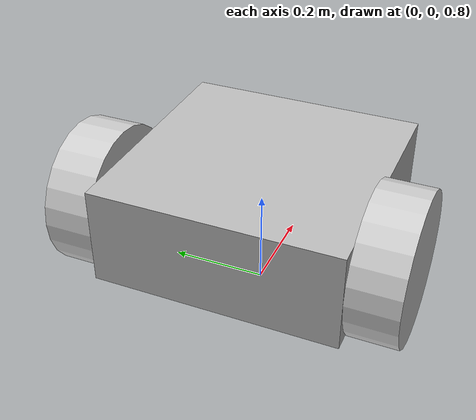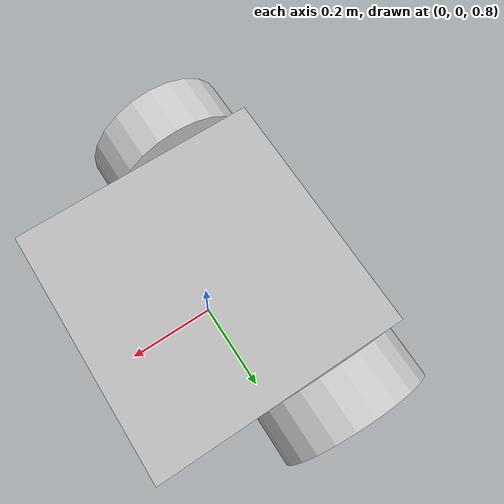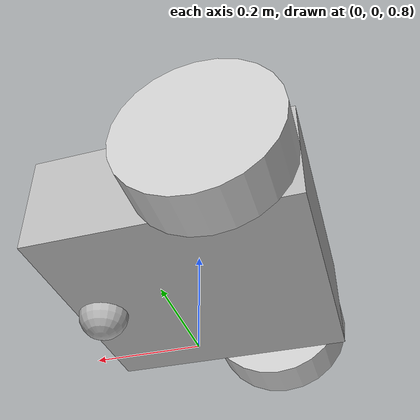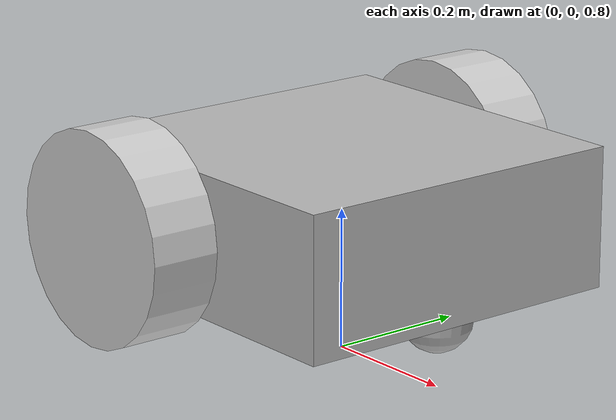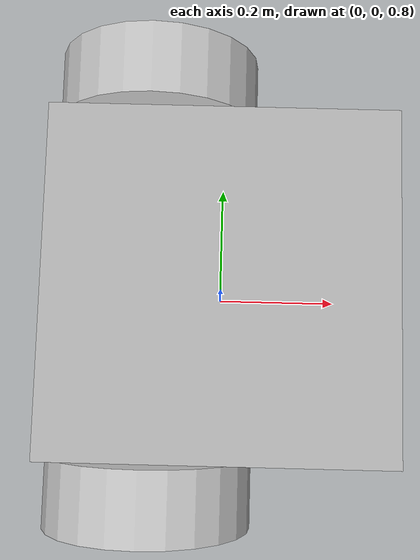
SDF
<?xml version="1.0" ?>
<sdf version="1.4">
    <model name="mobile_base">
        <!--Base-->
        <pose>0 0 1 0 0 0</pose>
        <self_collide>true</self_collide>
        <link name="base_mobile">
            <visual name="visual">
                <geometry>
                    <box>
                        <size>0.5 0.5 0.2</size>
                    </box>
                </geometry>
            </visual>
            <collision name="collision">
                <geometry>
                    <box>
                        <size>0.5 0.5 0.2</size>
                    </box>
                </geometry>
            </collision>
            <inertial>
                <mass>50</mass>
                <inertia>
                    <ixx>0.145833</ixx>
                    <ixy>0</ixy>
                    <ixz>0</ixz>
                    <iyy>0.145833</iyy>
                    <iyz>0</iyz>
                    <izz>0.125</izz>
                </inertia>
            </inertial>
            <sensor name="imu_sensor" type="imu">
                <always_on>1</always_on>
                <update_rate>1</update_rate>
                <visualize>true</visualize>
                <topic>imu</topic>
            </sensor>
        </link>

        <!--Left wheel-->
        <link name='wheel_L'>
            <pose>-0.1 0.3 0 1.57075 0 0</pose>
            <inertial>
                <mass>20</mass>
                <inertia>
                    <ixx>0.145833</ixx>
                    <ixy>0</ixy>
                    <ixz>0</ixz>
                    <iyy>0.145833</iyy>
                    <iyz>0</iyz>
                    <izz>0.125</izz>
                </inertia>
            </inertial>
            <visual name='visual'>
                <geometry>
                    <cylinder>
                        <radius>0.15</radius>
                        <length>0.1</length>
                    </cylinder>
                </geometry>
                <material>
                    <ambient>0.8 0.8 0.8 1</ambient>
                    <diffuse>0.8 0.8 0.8 1</diffuse>
                    <specular>0.8 0.8 0.8 1</specular>
                </material>
            </visual>
            <collision name='collision'>
                <geometry>
                    <cylinder>
                        <radius>0.15</radius>
                        <length>0.1</length>
                    </cylinder>
                </geometry>
            </collision>
        </link>

        <!--Left joint-->
        <joint name='joint_L' type='universal'>
            <parent>base_mobile</parent>
            <child>wheel_L</child>
            <axis>
                <xyz>0 1 0</xyz>
            </axis>
            <origin>
                <xyz>0 0 0</xyz>
            </origin>
        </joint>

        <!--Right wheel-->
        <link name='wheel_R'>
            <pose>-0.1 -0.30 0 1.57075 0 0</pose>
            <inertial>
                <mass>20</mass>
                <inertia>
                    <ixx>0.145833</ixx>
                    <ixy>0</ixy>
                    <ixz>0</ixz>
                    <iyy>0.145833</iyy>
                    <iyz>0</iyz>
                    <izz>0.125</izz>
                </inertia>
            </inertial>
            <visual name='visual'>
                <geometry>
                    <cylinder>
                        <radius>0.15</radius>
                        <length>0.1</length>
                    </cylinder>
                </geometry>
                <material>
                    <ambient>0.8 0.8 0.8 1</ambient>
                    <diffuse>0.8 0.8 0.8 1</diffuse>
                    <specular>0.8 0.8 0.8 1</specular>
                </material>
            </visual>
            <collision name='collision'>
                <geometry>
                    <cylinder>
                        <radius>0.15</radius>
                        <length>0.1</length>
                    </cylinder>
                </geometry>
            </collision>
        </link>

        <!--Right joint-->
        <joint name='joint_R' type='universal'>
            <parent>base_mobile</parent>
            <child>wheel_R</child>
            <axis>
                <xyz>0 1 0</xyz>
            </axis>
            <origin>
                <xyz>0 0 0</xyz>
            </origin>
        </joint>

        <!-- Caster Wheel -->
        <link name="front_caster">
            <pose relative_to="base_mobile">0.2 0 -0.1 0 0 0</pose>
            <visual name='visual'>
                <geometry>
                    <sphere>
                        <radius>0.05</radius>
                    </sphere>
                </geometry>
            </visual>
            <collision name='collision'>
                <geometry>
                    <sphere>
                        <radius>0.05</radius>
                    </sphere>
                </geometry>
            </collision>
        </link>

        <joint name='caster_joint' type='fixed'>
            <parent>base_mobile</parent>
            <child>front_caster</child>
        </joint>

        <!-- Plugin to move base -->
        <plugin filename="libignition-gazebo-diff-drive-system.so" name="ignition::gazebo::systems::DiffDrive">
            <left_joint>joint_L</left_joint>
            <right_joint>joint_R</right_joint>
            <wheel_separation>0.6</wheel_separation>
            <wheel_radius>0.15</wheel_radius>
            <odom_publish_frequency>5</odom_publish_frequency>
            <topic>cmd_vel</topic>
        </plugin>

    </model>
</sdf>
